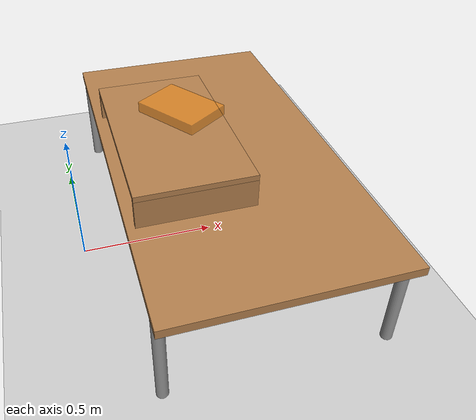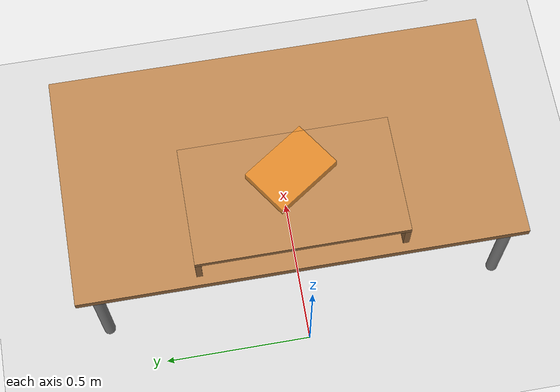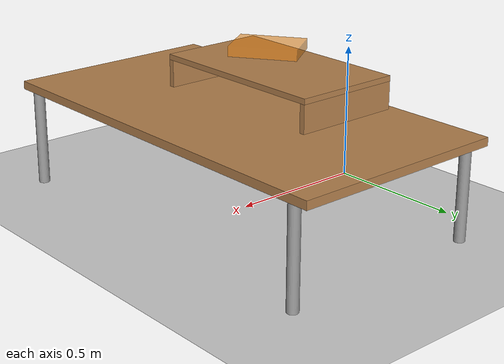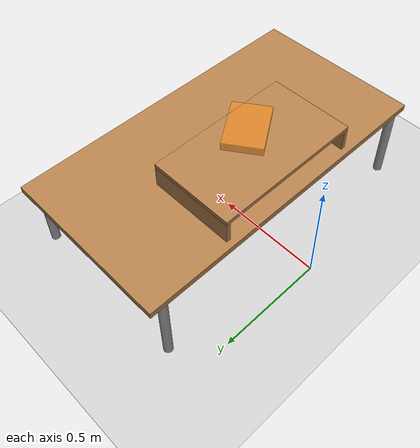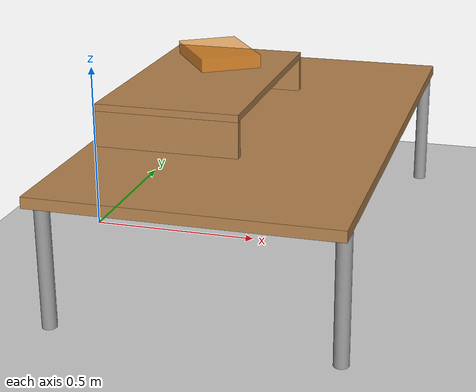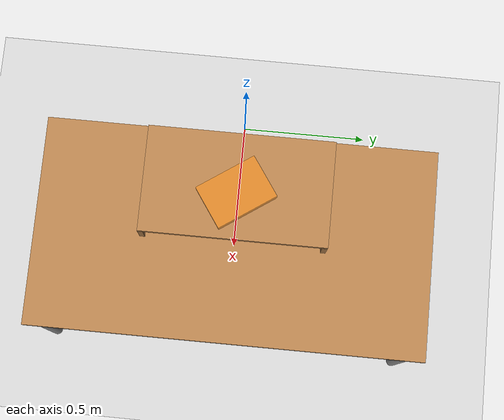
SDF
<sdf version="1.5">
 <world name="default">
  <include><uri>model://sun</uri></include>
  <include><uri>model://ground_plane</uri></include>
  <include><uri>model://vte_table</uri><pose>0.530772 0 0 0 0 -1.57</pose></include>
  <include><uri>model://vte_shelf</uri><pose>0.359608 0 0.38 0 0 -1.57</pose></include>
  <include><uri>model://vte_box</uri><pose>0.4 0.0 0.55 0 0 -0.97</pose></include>
 </world>
</sdf>

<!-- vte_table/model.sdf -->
<sdf version="1.5">
  <model name="vte_table">
    <static>true</static>
    <link name="vte_table_root_link">
      <collision name="vte_table_surface_collision">
	<pose>0 0 0.365 0 0 0</pose>
	<geometry>
          <box>
            <size>1.5 0.8 0.03</size>
          </box>
	</geometry>
	<surface>
          <friction>
            <ode>
              <mu>0.1</mu>
              <mu2>0.1</mu2>
            </ode>
          </friction>
	</surface>
      </collision>
      <visual name="vte_table_surface_visual">
	<pose>0 0 0.365 0 0 0</pose>
	<geometry>
          <box>
            <size>1.5 0.8 0.03</size>
          </box>
	</geometry>
	<material>
          <script>
            <uri>file://media/materials/scripts/gazebo.material</uri>
            <name>Gazebo/Wood</name>
          </script>
	</material>
      </visual>
      <collision name="front_left_leg">
        <pose>0.68 0.38 0.175 0 0 0</pose>
        <geometry>
          <cylinder>
            <radius>0.02</radius>
            <length>0.35</length>
          </cylinder>
        </geometry>
      </collision>
      <visual name="front_left_leg">
        <pose>0.68 0.38 0.175 0 0 0</pose>
        <geometry>
          <cylinder>
            <radius>0.02</radius>
            <length>0.35</length>
          </cylinder>
        </geometry>
        <material>
          <script>
            <uri>file://media/materials/scripts/gazebo.material</uri>
            <name>Gazebo/Grey</name>
          </script>
        </material>
      </visual>
      <collision name="front_right_leg">
        <pose>0.68 -0.38 0.175 0 0 0</pose>
        <geometry>
          <cylinder>
            <radius>0.02</radius>
            <length>0.35</length>
          </cylinder>
        </geometry>
      </collision>
      <visual name="front_right_leg">
        <pose>0.68 -0.38 0.175 0 0 0</pose>
        <geometry>
          <cylinder>
            <radius>0.02</radius>
            <length>0.35</length>
          </cylinder>
        </geometry>
        <material>
          <script>
            <uri>file://media/materials/scripts/gazebo.material</uri>
            <name>Gazebo/Grey</name>
          </script>
        </material>
      </visual>
      <collision name="back_right_leg">
        <pose>-0.68 -0.38 0.175 0 0 0</pose>
        <geometry>
          <cylinder>
            <radius>0.02</radius>
            <length>0.35</length>
          </cylinder>
        </geometry>
      </collision>
      <visual name="back_right_leg">
        <pose>-0.68 -0.38 0.175 0 0 0</pose>
        <geometry>
          <cylinder>
            <radius>0.02</radius>
            <length>0.35</length>
          </cylinder>
        </geometry>
        <material>
          <script>
            <uri>file://media/materials/scripts/gazebo.material</uri>
            <name>Gazebo/Grey</name>
          </script>
        </material>
      </visual>
      <collision name="back_left_leg">
        <pose>-0.68 0.38 0.175 0 0 0</pose>
        <geometry>
          <cylinder>
            <radius>0.02</radius>
            <length>0.35</length>
          </cylinder>
        </geometry>
      </collision>
      <visual name="back_left_leg">
        <pose>-0.68 0.38 0.175 0 0 0</pose>
        <geometry>
          <cylinder>
            <radius>0.02</radius>
            <length>0.35</length>
          </cylinder>
        </geometry>
        <material>
          <script>
            <uri>file://media/materials/scripts/gazebo.material</uri>
            <name>Gazebo/Grey</name>
          </script>
        </material>
      </visual>
    </link>
  </model>
</sdf>

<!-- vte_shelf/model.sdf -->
<sdf version="1.5">
  <model name="vte_shelf">
    <static>true</static>
    <link name="vte_shelf_root_link">
      <collision name="vte_shelf_surface_collision">
	<pose>0 0 0.11 0 0 0</pose>
	<geometry>
          <box>
            <size>0.7 0.4 0.02</size>
          </box>
	</geometry>
	<surface>
          <friction>
            <ode>
              <mu>0.4</mu>
              <mu2>0.4</mu2>
            </ode>
          </friction>
	</surface>
      </collision>
      <visual name="vte_shelf_surface_visual">
	<pose>0 0 0.11 0 0 0</pose>
	<geometry>
          <box>
            <size>0.7 0.4 0.02</size>
          </box>
	</geometry>
	<material>
          <script>
            <uri>file://media/materials/scripts/gazebo.material</uri>
            <name>Gazebo/Wood</name>
          </script>
	</material>
      </visual>
      <visual name="left_support_visual">
	<pose>-0.33999999999999997 0.0 0.05 0 0 0</pose>
	<geometry>
          <box>
            <size>0.02 0.4 0.1</size>
          </box>
	</geometry>
	<material>
          <script>
            <uri>file://media/materials/scripts/gazebo.material</uri>
            <name>Gazebo/Wood</name>
          </script>
	</material>
      </visual>
      <visual name="right_support_visual">
	<pose>0.33999999999999997 0.0 0.05 0 0 0</pose>
	<geometry>
          <box>
            <size>0.02 0.4 0.1</size>
          </box>
	</geometry>
	<material>
          <script>
            <uri>file://media/materials/scripts/gazebo.material</uri>
            <name>Gazebo/Wood</name>
          </script>
	</material>
      </visual>
    </link>
  </model>
</sdf>

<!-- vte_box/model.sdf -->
<sdf version="1.5">
  <model name='vte_box'>
    <link name='vte_box_root_link'>
      <pose>0 0 0.0185 0 0 0</pose>
      <inertial>
	<!-- CoM -->
	<pose>0.0 0.0 0.0</pose>
        <mass>0.8</mass>
        <inertia>
          <ixx>0.0020179333333333336</ixx>
          <ixy>0.0</ixy>
          <ixz>0.0</ixz>
          <iyy>0.003931266666666666</iyy>
          <iyz>0.0</iyz>
          <izz>0.005766666666666667</izz>
        </inertia>
      </inertial>
      <collision name='vte_box_collision'>
        <geometry>
	  <box>
	    <size>0.24 0.17 0.037</size>
	  </box>
        </geometry>
	<surface>
          <friction>
            <ode>
              <mu>0.5</mu>
              <mu2>0.5</mu2>
            </ode>
          </friction>
	</surface>
      </collision>
      <visual name='vte_box_visual'>
        <geometry>
	  <box>
	    <size>0.24 0.17 0.037</size>
	  </box>
        </geometry>
        <material>
	  <script>
	    <uri>file://media/materials/scripts/gazebo.material</uri>
	    <name>Gazebo/Orange</name>
	  </script>
        </material>
	<transparency>0.4</transparency>
      </visual>
    </link>
    <plugin name="pose_publisher" filename='libgazebo_yarp_modelposepublisher.so'>
      <period>0.01</period>
    </plugin>
  </model>
</sdf>
